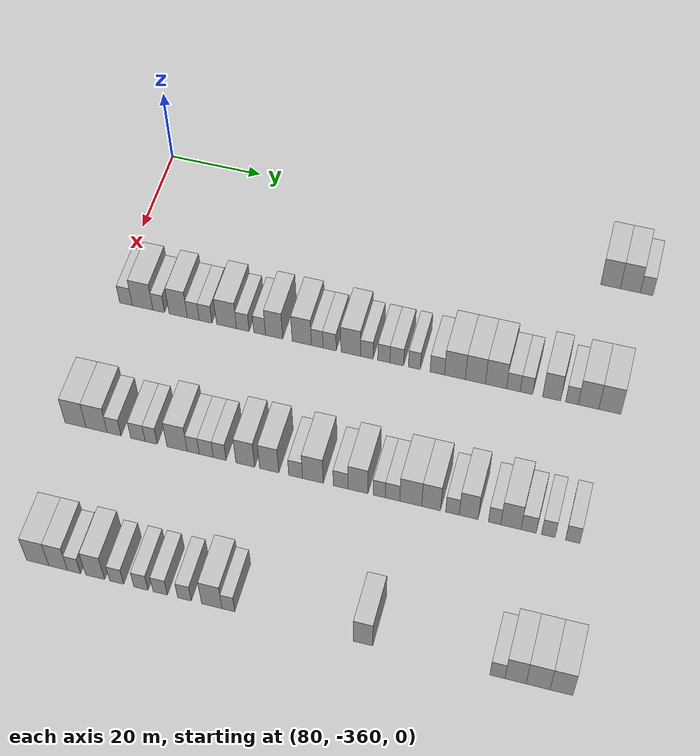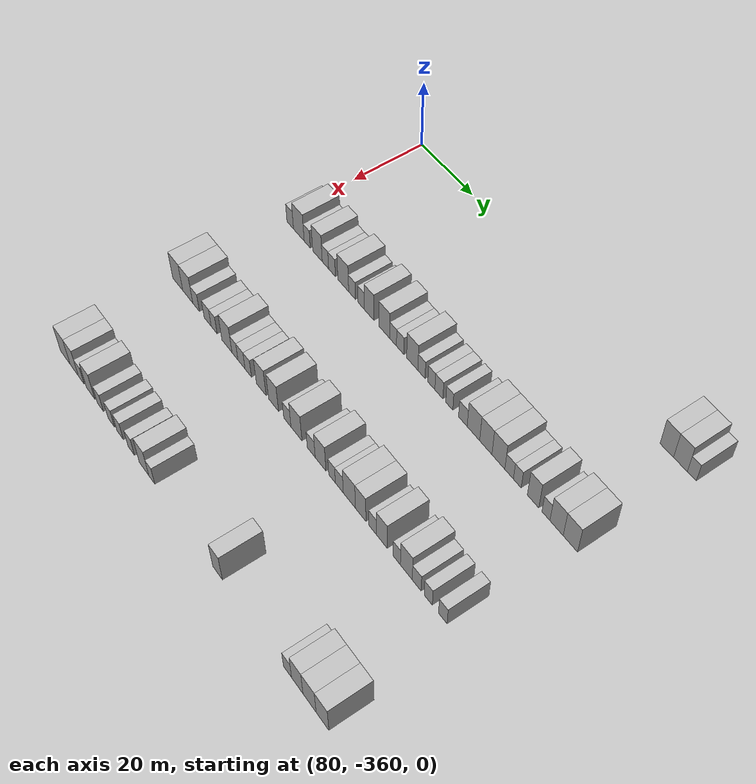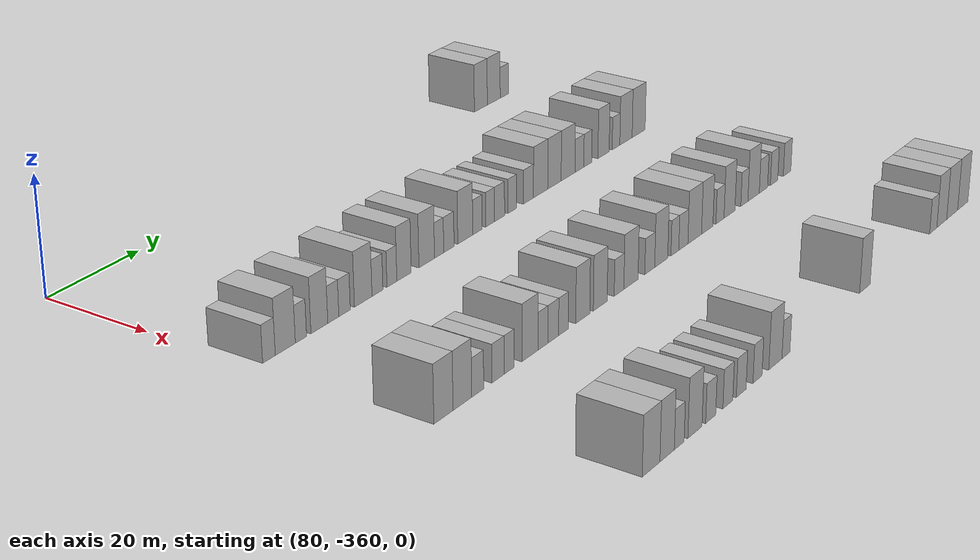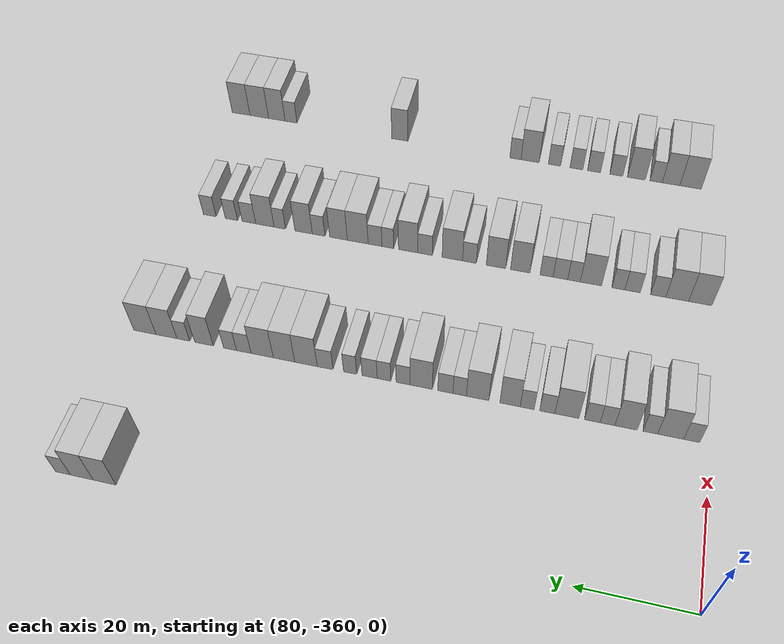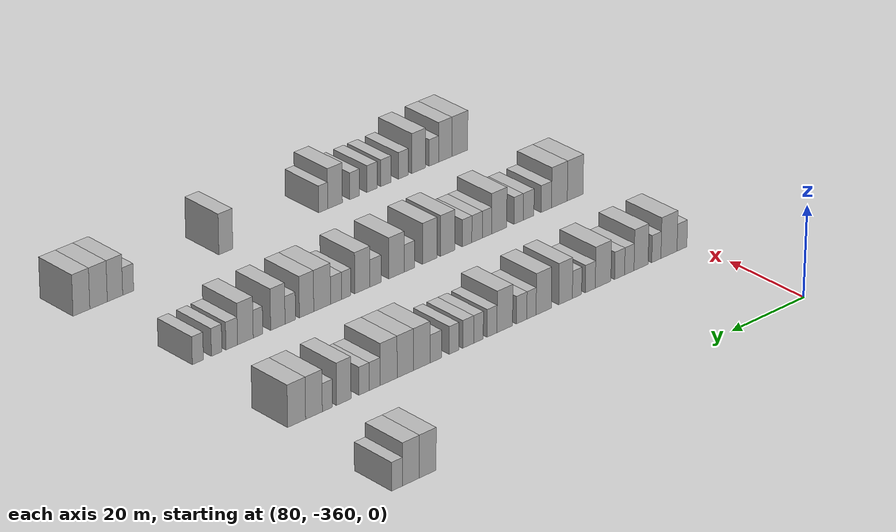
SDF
<sdf version="1.6">
 <world name="default">
  <model name="building_505">
   <static>1</static>
   <pose>85.0000 -260.9077 0 0.000000 0.000000 0.000000</pose>
   <link name="link">
    <pose>0 0 4.50 0 0 0</pose>
    <collision name="collision"><geometry><box><size>10.0000 4.1247 9.0000</size></box></geometry></collision>
    <visual name="visual">
     <cast_shadows>0</cast_shadows>
     <geometry><box><size>10.0000 4.1247 9.0000</size></box></geometry>
     <material>
      <script>
       <uri>model://HANNAS_wall/materials/scripts</uri>
       <uri>model://HANNAS_wall/materials/textures</uri>
       <name>vrc/HANNAS_wall</name>
      </script>
     </material>
    </visual>
   </link>
  </model>
  <model name="building_506">
   <static>1</static>
   <pose>85.0000 -256.7634 0 0.000000 0.000000 0.000000</pose>
   <link name="link">
    <pose>0 0 4.50 0 0 0</pose>
    <collision name="collision"><geometry><box><size>10.0000 4.1638 9.0000</size></box></geometry></collision>
    <visual name="visual">
     <cast_shadows>0</cast_shadows>
     <geometry><box><size>10.0000 4.1638 9.0000</size></box></geometry>
     <material>
      <script>
       <uri>model://HANNAS_wall/materials/scripts</uri>
       <uri>model://HANNAS_wall/materials/textures</uri>
       <name>vrc/HANNAS_wall</name>
      </script>
     </material>
    </visual>
   </link>
  </model>
  <model name="building_507">
   <static>1</static>
   <pose>85.0000 -253.3404 0 0.000000 0.000000 0.000000</pose>
   <link name="link">
    <pose>0 0 3.00 0 0 0</pose>
    <collision name="collision"><geometry><box><size>10.0000 2.6822 6.0000</size></box></geometry></collision>
    <visual name="visual">
     <cast_shadows>0</cast_shadows>
     <geometry><box><size>10.0000 2.6822 6.0000</size></box></geometry>
     <material>
      <script>
       <uri>model://HANNAS_wall/materials/scripts</uri>
       <uri>model://HANNAS_wall/materials/textures</uri>
       <name>vrc/HANNAS_wall</name>
      </script>
     </material>
    </visual>
   </link>
  </model>
  <model name="building_708">
   <static>1</static>
   <pose>115.0000 -356.8644 0 0.000000 0.000000 0.000000</pose>
   <link name="link">
    <pose>0 0 3.00 0 0 0</pose>
    <collision name="collision"><geometry><box><size>10.0000 2.7618 6.0000</size></box></geometry></collision>
    <visual name="visual">
     <cast_shadows>0</cast_shadows>
     <geometry><box><size>10.0000 2.7618 6.0000</size></box></geometry>
     <material>
      <script>
       <uri>model://HANNAS_wall/materials/scripts</uri>
       <uri>model://HANNAS_wall/materials/textures</uri>
       <name>vrc/HANNAS_wall</name>
      </script>
     </material>
    </visual>
   </link>
  </model>
  <model name="building_709">
   <static>1</static>
   <pose>115.0000 -353.2475 0 0.000000 0.000000 0.000000</pose>
   <link name="link">
    <pose>0 0 4.50 0 0 0</pose>
    <collision name="collision"><geometry><box><size>10.0000 4.4720 9.0000</size></box></geometry></collision>
    <visual name="visual">
     <cast_shadows>0</cast_shadows>
     <geometry><box><size>10.0000 4.4720 9.0000</size></box></geometry>
     <material>
      <script>
       <uri>model://HANNAS_wall/materials/scripts</uri>
       <uri>model://HANNAS_wall/materials/textures</uri>
       <name>vrc/HANNAS_wall</name>
      </script>
     </material>
    </visual>
   </link>
  </model>
  <model name="building_710">
   <static>1</static>
   <pose>115.0000 -349.7443 0 0.000000 0.000000 0.000000</pose>
   <link name="link">
    <pose>0 0 3.00 0 0 0</pose>
    <collision name="collision"><geometry><box><size>10.0000 2.5344 6.0000</size></box></geometry></collision>
    <visual name="visual">
     <cast_shadows>0</cast_shadows>
     <geometry><box><size>10.0000 2.5344 6.0000</size></box></geometry>
     <material>
      <script>
       <uri>model://HANNAS_wall/materials/scripts</uri>
       <uri>model://HANNAS_wall/materials/textures</uri>
       <name>vrc/HANNAS_wall</name>
      </script>
     </material>
    </visual>
   </link>
  </model>
  <model name="building_711">
   <static>1</static>
   <pose>115.0000 -345.5267 0 0.000000 0.000000 0.000000</pose>
   <link name="link">
    <pose>0 0 4.50 0 0 0</pose>
    <collision name="collision"><geometry><box><size>10.0000 3.9007 9.0000</size></box></geometry></collision>
    <visual name="visual">
     <cast_shadows>0</cast_shadows>
     <geometry><box><size>10.0000 3.9007 9.0000</size></box></geometry>
     <material>
      <script>
       <uri>model://HANNAS_wall/materials/scripts</uri>
       <uri>model://HANNAS_wall/materials/textures</uri>
       <name>vrc/HANNAS_wall</name>
      </script>
     </material>
    </visual>
   </link>
  </model>
  <model name="building_712">
   <static>1</static>
   <pose>115.0000 -342.2818 0 0.000000 0.000000 0.000000</pose>
   <link name="link">
    <pose>0 0 3.00 0 0 0</pose>
    <collision name="collision"><geometry><box><size>10.0000 2.5893 6.0000</size></box></geometry></collision>
    <visual name="visual">
     <cast_shadows>0</cast_shadows>
     <geometry><box><size>10.0000 2.5893 6.0000</size></box></geometry>
     <material>
      <script>
       <uri>model://HANNAS_wall/materials/scripts</uri>
       <uri>model://HANNAS_wall/materials/textures</uri>
       <name>vrc/HANNAS_wall</name>
      </script>
     </material>
    </visual>
   </link>
  </model>
  <model name="building_713">
   <static>1</static>
   <pose>115.0000 -339.6200 0 0.000000 0.000000 0.000000</pose>
   <link name="link">
    <pose>0 0 3.00 0 0 0</pose>
    <collision name="collision"><geometry><box><size>10.0000 2.7343 6.0000</size></box></geometry></collision>
    <visual name="visual">
     <cast_shadows>0</cast_shadows>
     <geometry><box><size>10.0000 2.7343 6.0000</size></box></geometry>
     <material>
      <script>
       <uri>model://HANNAS_wall/materials/scripts</uri>
       <uri>model://HANNAS_wall/materials/textures</uri>
       <name>vrc/HANNAS_wall</name>
      </script>
     </material>
    </visual>
   </link>
  </model>
  <model name="building_714">
   <static>1</static>
   <pose>115.0000 -335.1193 0 0.000000 0.000000 0.000000</pose>
   <link name="link">
    <pose>0 0 4.50 0 0 0</pose>
    <collision name="collision"><geometry><box><size>10.0000 4.2670 9.0000</size></box></geometry></collision>
    <visual name="visual">
     <cast_shadows>0</cast_shadows>
     <geometry><box><size>10.0000 4.2670 9.0000</size></box></geometry>
     <material>
      <script>
       <uri>model://HANNAS_wall/materials/scripts</uri>
       <uri>model://HANNAS_wall/materials/textures</uri>
       <name>vrc/HANNAS_wall</name>
      </script>
     </material>
    </visual>
   </link>
  </model>
  <model name="building_715">
   <static>1</static>
   <pose>115.0000 -331.6394 0 0.000000 0.000000 0.000000</pose>
   <link name="link">
    <pose>0 0 3.00 0 0 0</pose>
    <collision name="collision"><geometry><box><size>10.0000 2.6928 6.0000</size></box></geometry></collision>
    <visual name="visual">
     <cast_shadows>0</cast_shadows>
     <geometry><box><size>10.0000 2.6928 6.0000</size></box></geometry>
     <material>
      <script>
       <uri>model://HANNAS_wall/materials/scripts</uri>
       <uri>model://HANNAS_wall/materials/textures</uri>
       <name>vrc/HANNAS_wall</name>
      </script>
     </material>
    </visual>
   </link>
  </model>
  <model name="building_716">
   <static>1</static>
   <pose>115.0000 -328.0481 0 0.000000 0.000000 0.000000</pose>
   <link name="link">
    <pose>0 0 3.00 0 0 0</pose>
    <collision name="collision"><geometry><box><size>10.0000 2.4899 6.0000</size></box></geometry></collision>
    <visual name="visual">
     <cast_shadows>0</cast_shadows>
     <geometry><box><size>10.0000 2.4899 6.0000</size></box></geometry>
     <material>
      <script>
       <uri>model://HANNAS_wall/materials/scripts</uri>
       <uri>model://HANNAS_wall/materials/textures</uri>
       <name>vrc/HANNAS_wall</name>
      </script>
     </material>
    </visual>
   </link>
  </model>
  <model name="building_717">
   <static>1</static>
   <pose>115.0000 -324.9728 0 0.000000 0.000000 0.000000</pose>
   <link name="link">
    <pose>0 0 4.50 0 0 0</pose>
    <collision name="collision"><geometry><box><size>10.0000 3.6605 9.0000</size></box></geometry></collision>
    <visual name="visual">
     <cast_shadows>0</cast_shadows>
     <geometry><box><size>10.0000 3.6605 9.0000</size></box></geometry>
     <material>
      <script>
       <uri>model://HANNAS_wall/materials/scripts</uri>
       <uri>model://HANNAS_wall/materials/textures</uri>
       <name>vrc/HANNAS_wall</name>
      </script>
     </material>
    </visual>
   </link>
  </model>
  <model name="building_718">
   <static>1</static>
   <pose>115.0000 -319.1096 0 0.000000 0.000000 0.000000</pose>
   <link name="link">
    <pose>0 0 4.50 0 0 0</pose>
    <collision name="collision"><geometry><box><size>10.0000 4.0659 9.0000</size></box></geometry></collision>
    <visual name="visual">
     <cast_shadows>0</cast_shadows>
     <geometry><box><size>10.0000 4.0659 9.0000</size></box></geometry>
     <material>
      <script>
       <uri>model://HANNAS_wall/materials/scripts</uri>
       <uri>model://HANNAS_wall/materials/textures</uri>
       <name>vrc/HANNAS_wall</name>
      </script>
     </material>
    </visual>
   </link>
  </model>
  <model name="building_719">
   <static>1</static>
   <pose>115.0000 -315.8519 0 0.000000 0.000000 0.000000</pose>
   <link name="link">
    <pose>0 0 3.00 0 0 0</pose>
    <collision name="collision"><geometry><box><size>10.0000 2.4496 6.0000</size></box></geometry></collision>
    <visual name="visual">
     <cast_shadows>0</cast_shadows>
     <geometry><box><size>10.0000 2.4496 6.0000</size></box></geometry>
     <material>
      <script>
       <uri>model://HANNAS_wall/materials/scripts</uri>
       <uri>model://HANNAS_wall/materials/textures</uri>
       <name>vrc/HANNAS_wall</name>
      </script>
     </material>
    </visual>
   </link>
  </model>
  <model name="building_720">
   <static>1</static>
   <pose>115.0000 -313.2362 0 0.000000 0.000000 0.000000</pose>
   <link name="link">
    <pose>0 0 3.00 0 0 0</pose>
    <collision name="collision"><geometry><box><size>10.0000 2.7818 6.0000</size></box></geometry></collision>
    <visual name="visual">
     <cast_shadows>0</cast_shadows>
     <geometry><box><size>10.0000 2.7818 6.0000</size></box></geometry>
     <material>
      <script>
       <uri>model://HANNAS_wall/materials/scripts</uri>
       <uri>model://HANNAS_wall/materials/textures</uri>
       <name>vrc/HANNAS_wall</name>
      </script>
     </material>
    </visual>
   </link>
  </model>
  <model name="building_721">
   <static>1</static>
   <pose>115.0000 -308.7893 0 0.000000 0.000000 0.000000</pose>
   <link name="link">
    <pose>0 0 4.50 0 0 0</pose>
    <collision name="collision"><geometry><box><size>10.0000 4.1120 9.0000</size></box></geometry></collision>
    <visual name="visual">
     <cast_shadows>0</cast_shadows>
     <geometry><box><size>10.0000 4.1120 9.0000</size></box></geometry>
     <material>
      <script>
       <uri>model://HANNAS_wall/materials/scripts</uri>
       <uri>model://HANNAS_wall/materials/textures</uri>
       <name>vrc/HANNAS_wall</name>
      </script>
     </material>
    </visual>
   </link>
  </model>
  <model name="building_722">
   <static>1</static>
   <pose>115.0000 -305.4355 0 0.000000 0.000000 0.000000</pose>
   <link name="link">
    <pose>0 0 3.00 0 0 0</pose>
    <collision name="collision"><geometry><box><size>10.0000 2.5956 6.0000</size></box></geometry></collision>
    <visual name="visual">
     <cast_shadows>0</cast_shadows>
     <geometry><box><size>10.0000 2.5956 6.0000</size></box></geometry>
     <material>
      <script>
       <uri>model://HANNAS_wall/materials/scripts</uri>
       <uri>model://HANNAS_wall/materials/textures</uri>
       <name>vrc/HANNAS_wall</name>
      </script>
     </material>
    </visual>
   </link>
  </model>
  <model name="building_723">
   <static>1</static>
   <pose>115.0000 -301.8810 0 0.000000 0.000000 0.000000</pose>
   <link name="link">
    <pose>0 0 3.00 0 0 0</pose>
    <collision name="collision"><geometry><box><size>10.0000 2.5132 6.0000</size></box></geometry></collision>
    <visual name="visual">
     <cast_shadows>0</cast_shadows>
     <geometry><box><size>10.0000 2.5132 6.0000</size></box></geometry>
     <material>
      <script>
       <uri>model://HANNAS_wall/materials/scripts</uri>
       <uri>model://HANNAS_wall/materials/textures</uri>
       <name>vrc/HANNAS_wall</name>
      </script>
     </material>
    </visual>
   </link>
  </model>
  <model name="building_724">
   <static>1</static>
   <pose>115.0000 -299.1929 0 0.000000 0.000000 0.000000</pose>
   <link name="link">
    <pose>0 0 3.00 0 0 0</pose>
    <collision name="collision"><geometry><box><size>10.0000 2.8631 6.0000</size></box></geometry></collision>
    <visual name="visual">
     <cast_shadows>0</cast_shadows>
     <geometry><box><size>10.0000 2.8631 6.0000</size></box></geometry>
     <material>
      <script>
       <uri>model://HANNAS_wall/materials/scripts</uri>
       <uri>model://HANNAS_wall/materials/textures</uri>
       <name>vrc/HANNAS_wall</name>
      </script>
     </material>
    </visual>
   </link>
  </model>
  <model name="building_725">
   <static>1</static>
   <pose>115.0000 -295.5247 0 0.000000 0.000000 0.000000</pose>
   <link name="link">
    <pose>0 0 3.00 0 0 0</pose>
    <collision name="collision"><geometry><box><size>10.0000 2.4732 6.0000</size></box></geometry></collision>
    <visual name="visual">
     <cast_shadows>0</cast_shadows>
     <geometry><box><size>10.0000 2.4732 6.0000</size></box></geometry>
     <material>
      <script>
       <uri>model://HANNAS_wall/materials/scripts</uri>
       <uri>model://HANNAS_wall/materials/textures</uri>
       <name>vrc/HANNAS_wall</name>
      </script>
     </material>
    </visual>
   </link>
  </model>
  <model name="building_726">
   <static>1</static>
   <pose>115.0000 -290.7898 0 0.000000 0.000000 0.000000</pose>
   <link name="link">
    <pose>0 0 3.00 0 0 0</pose>
    <collision name="collision"><geometry><box><size>10.0000 2.9967 6.0000</size></box></geometry></collision>
    <visual name="visual">
     <cast_shadows>0</cast_shadows>
     <geometry><box><size>10.0000 2.9967 6.0000</size></box></geometry>
     <material>
      <script>
       <uri>model://HANNAS_wall/materials/scripts</uri>
       <uri>model://HANNAS_wall/materials/textures</uri>
       <name>vrc/HANNAS_wall</name>
      </script>
     </material>
    </visual>
   </link>
  </model>
  <model name="building_727">
   <static>1</static>
   <pose>115.0000 -287.1499 0 0.000000 0.000000 0.000000</pose>
   <link name="link">
    <pose>0 0 4.50 0 0 0</pose>
    <collision name="collision"><geometry><box><size>10.0000 4.2832 9.0000</size></box></geometry></collision>
    <visual name="visual">
     <cast_shadows>0</cast_shadows>
     <geometry><box><size>10.0000 4.2832 9.0000</size></box></geometry>
     <material>
      <script>
       <uri>model://HANNAS_wall/materials/scripts</uri>
       <uri>model://HANNAS_wall/materials/textures</uri>
       <name>vrc/HANNAS_wall</name>
      </script>
     </material>
    </visual>
   </link>
  </model>
  <model name="building_728">
   <static>1</static>
   <pose>115.0000 -282.9449 0 0.000000 0.000000 0.000000</pose>
   <link name="link">
    <pose>0 0 4.50 0 0 0</pose>
    <collision name="collision"><geometry><box><size>10.0000 4.1266 9.0000</size></box></geometry></collision>
    <visual name="visual">
     <cast_shadows>0</cast_shadows>
     <geometry><box><size>10.0000 4.1266 9.0000</size></box></geometry>
     <material>
      <script>
       <uri>model://HANNAS_wall/materials/scripts</uri>
       <uri>model://HANNAS_wall/materials/textures</uri>
       <name>vrc/HANNAS_wall</name>
      </script>
     </material>
    </visual>
   </link>
  </model>
  <model name="building_729">
   <static>1</static>
   <pose>115.0000 -278.7370 0 0.000000 0.000000 0.000000</pose>
   <link name="link">
    <pose>0 0 4.50 0 0 0</pose>
    <collision name="collision"><geometry><box><size>10.0000 4.2893 9.0000</size></box></geometry></collision>
    <visual name="visual">
     <cast_shadows>0</cast_shadows>
     <geometry><box><size>10.0000 4.2893 9.0000</size></box></geometry>
     <material>
      <script>
       <uri>model://HANNAS_wall/materials/scripts</uri>
       <uri>model://HANNAS_wall/materials/textures</uri>
       <name>vrc/HANNAS_wall</name>
      </script>
     </material>
    </visual>
   </link>
  </model>
  <model name="building_730">
   <static>1</static>
   <pose>115.0000 -275.1830 0 0.000000 0.000000 0.000000</pose>
   <link name="link">
    <pose>0 0 3.00 0 0 0</pose>
    <collision name="collision"><geometry><box><size>10.0000 2.8186 6.0000</size></box></geometry></collision>
    <visual name="visual">
     <cast_shadows>0</cast_shadows>
     <geometry><box><size>10.0000 2.8186 6.0000</size></box></geometry>
     <material>
      <script>
       <uri>model://HANNAS_wall/materials/scripts</uri>
       <uri>model://HANNAS_wall/materials/textures</uri>
       <name>vrc/HANNAS_wall</name>
      </script>
     </material>
    </visual>
   </link>
  </model>
  <model name="building_731">
   <static>1</static>
   <pose>115.0000 -272.5029 0 0.000000 0.000000 0.000000</pose>
   <link name="link">
    <pose>0 0 3.00 0 0 0</pose>
    <collision name="collision"><geometry><box><size>10.0000 2.5417 6.0000</size></box></geometry></collision>
    <visual name="visual">
     <cast_shadows>0</cast_shadows>
     <geometry><box><size>10.0000 2.5417 6.0000</size></box></geometry>
     <material>
      <script>
       <uri>model://HANNAS_wall/materials/scripts</uri>
       <uri>model://HANNAS_wall/materials/textures</uri>
       <name>vrc/HANNAS_wall</name>
      </script>
     </material>
    </visual>
   </link>
  </model>
  <model name="building_732">
   <static>1</static>
   <pose>115.0000 -267.3993 0 0.000000 0.000000 0.000000</pose>
   <link name="link">
    <pose>0 0 4.50 0 0 0</pose>
    <collision name="collision"><geometry><box><size>10.0000 3.6655 9.0000</size></box></geometry></collision>
    <visual name="visual">
     <cast_shadows>0</cast_shadows>
     <geometry><box><size>10.0000 3.6655 9.0000</size></box></geometry>
     <material>
      <script>
       <uri>model://HANNAS_wall/materials/scripts</uri>
       <uri>model://HANNAS_wall/materials/textures</uri>
       <name>vrc/HANNAS_wall</name>
      </script>
     </material>
    </visual>
   </link>
  </model>
  <model name="building_733">
   <static>1</static>
   <pose>115.0000 -263.3040 0 0.000000 0.000000 0.000000</pose>
   <link name="link">
    <pose>0 0 3.00 0 0 0</pose>
    <collision name="collision"><geometry><box><size>10.0000 2.5251 6.0000</size></box></geometry></collision>
    <visual name="visual">
     <cast_shadows>0</cast_shadows>
     <geometry><box><size>10.0000 2.5251 6.0000</size></box></geometry>
     <material>
      <script>
       <uri>model://HANNAS_wall/materials/scripts</uri>
       <uri>model://HANNAS_wall/materials/textures</uri>
       <name>vrc/HANNAS_wall</name>
      </script>
     </material>
    </visual>
   </link>
  </model>
  <model name="building_734">
   <static>1</static>
   <pose>115.0000 -259.9657 0 0.000000 0.000000 0.000000</pose>
   <link name="link">
    <pose>0 0 4.50 0 0 0</pose>
    <collision name="collision"><geometry><box><size>10.0000 4.1515 9.0000</size></box></geometry></collision>
    <visual name="visual">
     <cast_shadows>0</cast_shadows>
     <geometry><box><size>10.0000 4.1515 9.0000</size></box></geometry>
     <material>
      <script>
       <uri>model://HANNAS_wall/materials/scripts</uri>
       <uri>model://HANNAS_wall/materials/textures</uri>
       <name>vrc/HANNAS_wall</name>
      </script>
     </material>
    </visual>
   </link>
  </model>
  <model name="building_735">
   <static>1</static>
   <pose>115.0000 -255.6677 0 0.000000 0.000000 0.000000</pose>
   <link name="link">
    <pose>0 0 4.50 0 0 0</pose>
    <collision name="collision"><geometry><box><size>10.0000 4.4446 9.0000</size></box></geometry></collision>
    <visual name="visual">
     <cast_shadows>0</cast_shadows>
     <geometry><box><size>10.0000 4.4446 9.0000</size></box></geometry>
     <material>
      <script>
       <uri>model://HANNAS_wall/materials/scripts</uri>
       <uri>model://HANNAS_wall/materials/textures</uri>
       <name>vrc/HANNAS_wall</name>
      </script>
     </material>
    </visual>
   </link>
  </model>
  <model name="building_938">
   <static>1</static>
   <pose>145.0000 -356.8283 0 0.000000 0.000000 0.000000</pose>
   <link name="link">
    <pose>0 0 4.50 0 0 0</pose>
    <collision name="collision"><geometry><box><size>10.0000 4.4118 9.0000</size></box></geometry></collision>
    <visual name="visual">
     <cast_shadows>0</cast_shadows>
     <geometry><box><size>10.0000 4.4118 9.0000</size></box></geometry>
     <material>
      <script>
       <uri>model://HANNAS_wall/materials/scripts</uri>
       <uri>model://HANNAS_wall/materials/textures</uri>
       <name>vrc/HANNAS_wall</name>
      </script>
     </material>
    </visual>
   </link>
  </model>
  <model name="building_939">
   <static>1</static>
   <pose>145.0000 -352.4324 0 0.000000 0.000000 0.000000</pose>
   <link name="link">
    <pose>0 0 4.50 0 0 0</pose>
    <collision name="collision"><geometry><box><size>10.0000 4.3799 9.0000</size></box></geometry></collision>
    <visual name="visual">
     <cast_shadows>0</cast_shadows>
     <geometry><box><size>10.0000 4.3799 9.0000</size></box></geometry>
     <material>
      <script>
       <uri>model://HANNAS_wall/materials/scripts</uri>
       <uri>model://HANNAS_wall/materials/textures</uri>
       <name>vrc/HANNAS_wall</name>
      </script>
     </material>
    </visual>
   </link>
  </model>
  <model name="building_940">
   <static>1</static>
   <pose>145.0000 -348.8052 0 0.000000 0.000000 0.000000</pose>
   <link name="link">
    <pose>0 0 3.00 0 0 0</pose>
    <collision name="collision"><geometry><box><size>10.0000 2.8744 6.0000</size></box></geometry></collision>
    <visual name="visual">
     <cast_shadows>0</cast_shadows>
     <geometry><box><size>10.0000 2.8744 6.0000</size></box></geometry>
     <material>
      <script>
       <uri>model://HANNAS_wall/materials/scripts</uri>
       <uri>model://HANNAS_wall/materials/textures</uri>
       <name>vrc/HANNAS_wall</name>
      </script>
     </material>
    </visual>
   </link>
  </model>
  <model name="building_941">
   <static>1</static>
   <pose>145.0000 -343.8777 0 0.000000 0.000000 0.000000</pose>
   <link name="link">
    <pose>0 0 3.00 0 0 0</pose>
    <collision name="collision"><geometry><box><size>10.0000 2.9807 6.0000</size></box></geometry></collision>
    <visual name="visual">
     <cast_shadows>0</cast_shadows>
     <geometry><box><size>10.0000 2.9807 6.0000</size></box></geometry>
     <material>
      <script>
       <uri>model://HANNAS_wall/materials/scripts</uri>
       <uri>model://HANNAS_wall/materials/textures</uri>
       <name>vrc/HANNAS_wall</name>
      </script>
     </material>
    </visual>
   </link>
  </model>
  <model name="building_942">
   <static>1</static>
   <pose>145.0000 -341.1432 0 0.000000 0.000000 0.000000</pose>
   <link name="link">
    <pose>0 0 3.00 0 0 0</pose>
    <collision name="collision"><geometry><box><size>10.0000 2.4883 6.0000</size></box></geometry></collision>
    <visual name="visual">
     <cast_shadows>0</cast_shadows>
     <geometry><box><size>10.0000 2.4883 6.0000</size></box></geometry>
     <material>
      <script>
       <uri>model://HANNAS_wall/materials/scripts</uri>
       <uri>model://HANNAS_wall/materials/textures</uri>
       <name>vrc/HANNAS_wall</name>
      </script>
     </material>
    </visual>
   </link>
  </model>
  <model name="building_943">
   <static>1</static>
   <pose>145.0000 -335.8153 0 0.000000 0.000000 0.000000</pose>
   <link name="link">
    <pose>0 0 4.50 0 0 0</pose>
    <collision name="collision"><geometry><box><size>10.0000 4.1676 9.0000</size></box></geometry></collision>
    <visual name="visual">
     <cast_shadows>0</cast_shadows>
     <geometry><box><size>10.0000 4.1676 9.0000</size></box></geometry>
     <material>
      <script>
       <uri>model://HANNAS_wall/materials/scripts</uri>
       <uri>model://HANNAS_wall/materials/textures</uri>
       <name>vrc/HANNAS_wall</name>
      </script>
     </material>
    </visual>
   </link>
  </model>
  <model name="building_944">
   <static>1</static>
   <pose>145.0000 -332.5053 0 0.000000 0.000000 0.000000</pose>
   <link name="link">
    <pose>0 0 3.00 0 0 0</pose>
    <collision name="collision"><geometry><box><size>10.0000 2.4524 6.0000</size></box></geometry></collision>
    <visual name="visual">
     <cast_shadows>0</cast_shadows>
     <geometry><box><size>10.0000 2.4524 6.0000</size></box></geometry>
     <material>
      <script>
       <uri>model://HANNAS_wall/materials/scripts</uri>
       <uri>model://HANNAS_wall/materials/textures</uri>
       <name>vrc/HANNAS_wall</name>
      </script>
     </material>
    </visual>
   </link>
  </model>
  <model name="building_945">
   <static>1</static>
   <pose>145.0000 -329.8388 0 0.000000 0.000000 0.000000</pose>
   <link name="link">
    <pose>0 0 3.00 0 0 0</pose>
    <collision name="collision"><geometry><box><size>10.0000 2.8806 6.0000</size></box></geometry></collision>
    <visual name="visual">
     <cast_shadows>0</cast_shadows>
     <geometry><box><size>10.0000 2.8806 6.0000</size></box></geometry>
     <material>
      <script>
       <uri>model://HANNAS_wall/materials/scripts</uri>
       <uri>model://HANNAS_wall/materials/textures</uri>
       <name>vrc/HANNAS_wall</name>
      </script>
     </material>
    </visual>
   </link>
  </model>
  <model name="building_946">
   <static>1</static>
   <pose>145.0000 -327.1089 0 0.000000 0.000000 0.000000</pose>
   <link name="link">
    <pose>0 0 3.00 0 0 0</pose>
    <collision name="collision"><geometry><box><size>10.0000 2.5794 6.0000</size></box></geometry></collision>
    <visual name="visual">
     <cast_shadows>0</cast_shadows>
     <geometry><box><size>10.0000 2.5794 6.0000</size></box></geometry>
     <material>
      <script>
       <uri>model://HANNAS_wall/materials/scripts</uri>
       <uri>model://HANNAS_wall/materials/textures</uri>
       <name>vrc/HANNAS_wall</name>
      </script>
     </material>
    </visual>
   </link>
  </model>
  <model name="building_947">
   <static>1</static>
   <pose>145.0000 -321.9064 0 0.000000 0.000000 0.000000</pose>
   <link name="link">
    <pose>0 0 4.50 0 0 0</pose>
    <collision name="collision"><geometry><box><size>10.0000 3.8255 9.0000</size></box></geometry></collision>
    <visual name="visual">
     <cast_shadows>0</cast_shadows>
     <geometry><box><size>10.0000 3.8255 9.0000</size></box></geometry>
     <material>
      <script>
       <uri>model://HANNAS_wall/materials/scripts</uri>
       <uri>model://HANNAS_wall/materials/textures</uri>
       <name>vrc/HANNAS_wall</name>
      </script>
     </material>
    </visual>
   </link>
  </model>
  <model name="building_948">
   <static>1</static>
   <pose>145.0000 -317.0617 0 0.000000 0.000000 0.000000</pose>
   <link name="link">
    <pose>0 0 4.50 0 0 0</pose>
    <collision name="collision"><geometry><box><size>10.0000 3.8639 9.0000</size></box></geometry></collision>
    <visual name="visual">
     <cast_shadows>0</cast_shadows>
     <geometry><box><size>10.0000 3.8639 9.0000</size></box></geometry>
     <material>
      <script>
       <uri>model://HANNAS_wall/materials/scripts</uri>
       <uri>model://HANNAS_wall/materials/textures</uri>
       <name>vrc/HANNAS_wall</name>
      </script>
     </material>
    </visual>
   </link>
  </model>
  <model name="building_949">
   <static>1</static>
   <pose>145.0000 -311.7407 0 0.000000 0.000000 0.000000</pose>
   <link name="link">
    <pose>0 0 3.00 0 0 0</pose>
    <collision name="collision"><geometry><box><size>10.0000 2.7782 6.0000</size></box></geometry></collision>
    <visual name="visual">
     <cast_shadows>0</cast_shadows>
     <geometry><box><size>10.0000 2.7782 6.0000</size></box></geometry>
     <material>
      <script>
       <uri>model://HANNAS_wall/materials/scripts</uri>
       <uri>model://HANNAS_wall/materials/textures</uri>
       <name>vrc/HANNAS_wall</name>
      </script>
     </material>
    </visual>
   </link>
  </model>
  <model name="building_950">
   <static>1</static>
   <pose>145.0000 -308.2813 0 0.000000 0.000000 0.000000</pose>
   <link name="link">
    <pose>0 0 4.50 0 0 0</pose>
    <collision name="collision"><geometry><box><size>10.0000 4.1406 9.0000</size></box></geometry></collision>
    <visual name="visual">
     <cast_shadows>0</cast_shadows>
     <geometry><box><size>10.0000 4.1406 9.0000</size></box></geometry>
     <material>
      <script>
       <uri>model://HANNAS_wall/materials/scripts</uri>
       <uri>model://HANNAS_wall/materials/textures</uri>
       <name>vrc/HANNAS_wall</name>
      </script>
     </material>
    </visual>
   </link>
  </model>
  <model name="building_951">
   <static>1</static>
   <pose>145.0000 -302.7348 0 0.000000 0.000000 0.000000</pose>
   <link name="link">
    <pose>0 0 3.00 0 0 0</pose>
    <collision name="collision"><geometry><box><size>10.0000 2.9525 6.0000</size></box></geometry></collision>
    <visual name="visual">
     <cast_shadows>0</cast_shadows>
     <geometry><box><size>10.0000 2.9525 6.0000</size></box></geometry>
     <material>
      <script>
       <uri>model://HANNAS_wall/materials/scripts</uri>
       <uri>model://HANNAS_wall/materials/textures</uri>
       <name>vrc/HANNAS_wall</name>
      </script>
     </material>
    </visual>
   </link>
  </model>
  <model name="building_952">
   <static>1</static>
   <pose>145.0000 -299.2792 0 0.000000 0.000000 0.000000</pose>
   <link name="link">
    <pose>0 0 4.50 0 0 0</pose>
    <collision name="collision"><geometry><box><size>10.0000 3.9588 9.0000</size></box></geometry></collision>
    <visual name="visual">
     <cast_shadows>0</cast_shadows>
     <geometry><box><size>10.0000 3.9588 9.0000</size></box></geometry>
     <material>
      <script>
       <uri>model://HANNAS_wall/materials/scripts</uri>
       <uri>model://HANNAS_wall/materials/textures</uri>
       <name>vrc/HANNAS_wall</name>
      </script>
     </material>
    </visual>
   </link>
  </model>
  <model name="building_953">
   <static>1</static>
   <pose>145.0000 -295.0889 0 0.000000 0.000000 0.000000</pose>
   <link name="link">
    <pose>0 0 3.00 0 0 0</pose>
    <collision name="collision"><geometry><box><size>10.0000 2.4218 6.0000</size></box></geometry></collision>
    <visual name="visual">
     <cast_shadows>0</cast_shadows>
     <geometry><box><size>10.0000 2.4218 6.0000</size></box></geometry>
     <material>
      <script>
       <uri>model://HANNAS_wall/materials/scripts</uri>
       <uri>model://HANNAS_wall/materials/textures</uri>
       <name>vrc/HANNAS_wall</name>
      </script>
     </material>
    </visual>
   </link>
  </model>
  <model name="building_954">
   <static>1</static>
   <pose>145.0000 -292.4491 0 0.000000 0.000000 0.000000</pose>
   <link name="link">
    <pose>0 0 3.00 0 0 0</pose>
    <collision name="collision"><geometry><box><size>10.0000 2.8577 6.0000</size></box></geometry></collision>
    <visual name="visual">
     <cast_shadows>0</cast_shadows>
     <geometry><box><size>10.0000 2.8577 6.0000</size></box></geometry>
     <material>
      <script>
       <uri>model://HANNAS_wall/materials/scripts</uri>
       <uri>model://HANNAS_wall/materials/textures</uri>
       <name>vrc/HANNAS_wall</name>
      </script>
     </material>
    </visual>
   </link>
  </model>
  <model name="building_955">
   <static>1</static>
   <pose>145.0000 -288.8513 0 0.000000 0.000000 0.000000</pose>
   <link name="link">
    <pose>0 0 4.50 0 0 0</pose>
    <collision name="collision"><geometry><box><size>10.0000 4.3379 9.0000</size></box></geometry></collision>
    <visual name="visual">
     <cast_shadows>0</cast_shadows>
     <geometry><box><size>10.0000 4.3379 9.0000</size></box></geometry>
     <material>
      <script>
       <uri>model://HANNAS_wall/materials/scripts</uri>
       <uri>model://HANNAS_wall/materials/textures</uri>
       <name>vrc/HANNAS_wall</name>
      </script>
     </material>
    </visual>
   </link>
  </model>
  <model name="building_956">
   <static>1</static>
   <pose>145.0000 -284.8399 0 0.000000 0.000000 0.000000</pose>
   <link name="link">
    <pose>0 0 4.50 0 0 0</pose>
    <collision name="collision"><geometry><box><size>10.0000 3.6849 9.0000</size></box></geometry></collision>
    <visual name="visual">
     <cast_shadows>0</cast_shadows>
     <geometry><box><size>10.0000 3.6849 9.0000</size></box></geometry>
     <material>
      <script>
       <uri>model://HANNAS_wall/materials/scripts</uri>
       <uri>model://HANNAS_wall/materials/textures</uri>
       <name>vrc/HANNAS_wall</name>
      </script>
     </material>
    </visual>
   </link>
  </model>
  <model name="building_957">
   <static>1</static>
   <pose>145.0000 -280.6612 0 0.000000 0.000000 0.000000</pose>
   <link name="link">
    <pose>0 0 3.00 0 0 0</pose>
    <collision name="collision"><geometry><box><size>10.0000 2.6726 6.0000</size></box></geometry></collision>
    <visual name="visual">
     <cast_shadows>0</cast_shadows>
     <geometry><box><size>10.0000 2.6726 6.0000</size></box></geometry>
     <material>
      <script>
       <uri>model://HANNAS_wall/materials/scripts</uri>
       <uri>model://HANNAS_wall/materials/textures</uri>
       <name>vrc/HANNAS_wall</name>
      </script>
     </material>
    </visual>
   </link>
  </model>
  <model name="building_958">
   <static>1</static>
   <pose>145.0000 -277.4936 0 0.000000 0.000000 0.000000</pose>
   <link name="link">
    <pose>0 0 4.50 0 0 0</pose>
    <collision name="collision"><geometry><box><size>10.0000 3.6626 9.0000</size></box></geometry></collision>
    <visual name="visual">
     <cast_shadows>0</cast_shadows>
     <geometry><box><size>10.0000 3.6626 9.0000</size></box></geometry>
     <material>
      <script>
       <uri>model://HANNAS_wall/materials/scripts</uri>
       <uri>model://HANNAS_wall/materials/textures</uri>
       <name>vrc/HANNAS_wall</name>
      </script>
     </material>
    </visual>
   </link>
  </model>
  <model name="building_959">
   <static>1</static>
   <pose>145.0000 -272.4554 0 0.000000 0.000000 0.000000</pose>
   <link name="link">
    <pose>0 0 3.00 0 0 0</pose>
    <collision name="collision"><geometry><box><size>10.0000 2.4138 6.0000</size></box></geometry></collision>
    <visual name="visual">
     <cast_shadows>0</cast_shadows>
     <geometry><box><size>10.0000 2.4138 6.0000</size></box></geometry>
     <material>
      <script>
       <uri>model://HANNAS_wall/materials/scripts</uri>
       <uri>model://HANNAS_wall/materials/textures</uri>
       <name>vrc/HANNAS_wall</name>
      </script>
     </material>
    </visual>
   </link>
  </model>
  <model name="building_960">
   <static>1</static>
   <pose>145.0000 -269.2724 0 0.000000 0.000000 0.000000</pose>
   <link name="link">
    <pose>0 0 4.50 0 0 0</pose>
    <collision name="collision"><geometry><box><size>10.0000 3.9522 9.0000</size></box></geometry></collision>
    <visual name="visual">
     <cast_shadows>0</cast_shadows>
     <geometry><box><size>10.0000 3.9522 9.0000</size></box></geometry>
     <material>
      <script>
       <uri>model://HANNAS_wall/materials/scripts</uri>
       <uri>model://HANNAS_wall/materials/textures</uri>
       <name>vrc/HANNAS_wall</name>
      </script>
     </material>
    </visual>
   </link>
  </model>
  <model name="building_961">
   <static>1</static>
   <pose>145.0000 -265.8401 0 0.000000 0.000000 0.000000</pose>
   <link name="link">
    <pose>0 0 3.00 0 0 0</pose>
    <collision name="collision"><geometry><box><size>10.0000 2.9124 6.0000</size></box></geometry></collision>
    <visual name="visual">
     <cast_shadows>0</cast_shadows>
     <geometry><box><size>10.0000 2.9124 6.0000</size></box></geometry>
     <material>
      <script>
       <uri>model://HANNAS_wall/materials/scripts</uri>
       <uri>model://HANNAS_wall/materials/textures</uri>
       <name>vrc/HANNAS_wall</name>
      </script>
     </material>
    </visual>
   </link>
  </model>
  <model name="building_962">
   <static>1</static>
   <pose>145.0000 -262.0682 0 0.000000 0.000000 0.000000</pose>
   <link name="link">
    <pose>0 0 3.00 0 0 0</pose>
    <collision name="collision"><geometry><box><size>10.0000 2.6313 6.0000</size></box></geometry></collision>
    <visual name="visual">
     <cast_shadows>0</cast_shadows>
     <geometry><box><size>10.0000 2.6313 6.0000</size></box></geometry>
     <material>
      <script>
       <uri>model://HANNAS_wall/materials/scripts</uri>
       <uri>model://HANNAS_wall/materials/textures</uri>
       <name>vrc/HANNAS_wall</name>
      </script>
     </material>
    </visual>
   </link>
  </model>
  <model name="building_963">
   <static>1</static>
   <pose>145.0000 -257.3772 0 0.000000 0.000000 0.000000</pose>
   <link name="link">
    <pose>0 0 3.00 0 0 0</pose>
    <collision name="collision"><geometry><box><size>10.0000 2.7508 6.0000</size></box></geometry></collision>
    <visual name="visual">
     <cast_shadows>0</cast_shadows>
     <geometry><box><size>10.0000 2.7508 6.0000</size></box></geometry>
     <material>
      <script>
       <uri>model://HANNAS_wall/materials/scripts</uri>
       <uri>model://HANNAS_wall/materials/textures</uri>
       <name>vrc/HANNAS_wall</name>
      </script>
     </material>
    </visual>
   </link>
  </model>
  <model name="building_1178">
   <static>1</static>
   <pose>175.0000 -353.2849 0 0.000000 0.000000 0.000000</pose>
   <link name="link">
    <pose>0 0 4.50 0 0 0</pose>
    <collision name="collision"><geometry><box><size>10.0000 4.4446 9.0000</size></box></geometry></collision>
    <visual name="visual">
     <cast_shadows>0</cast_shadows>
     <geometry><box><size>10.0000 4.4446 9.0000</size></box></geometry>
     <material>
      <script>
       <uri>model://HANNAS_wall/materials/scripts</uri>
       <uri>model://HANNAS_wall/materials/textures</uri>
       <name>vrc/HANNAS_wall</name>
      </script>
     </material>
    </visual>
   </link>
  </model>
  <model name="building_1179">
   <static>1</static>
   <pose>175.0000 -349.2159 0 0.000000 0.000000 0.000000</pose>
   <link name="link">
    <pose>0 0 4.50 0 0 0</pose>
    <collision name="collision"><geometry><box><size>10.0000 3.6934 9.0000</size></box></geometry></collision>
    <visual name="visual">
     <cast_shadows>0</cast_shadows>
     <geometry><box><size>10.0000 3.6934 9.0000</size></box></geometry>
     <material>
      <script>
       <uri>model://HANNAS_wall/materials/scripts</uri>
       <uri>model://HANNAS_wall/materials/textures</uri>
       <name>vrc/HANNAS_wall</name>
      </script>
     </material>
    </visual>
   </link>
  </model>
  <model name="building_1180">
   <static>1</static>
   <pose>175.0000 -346.0854 0 0.000000 0.000000 0.000000</pose>
   <link name="link">
    <pose>0 0 3.00 0 0 0</pose>
    <collision name="collision"><geometry><box><size>10.0000 2.5677 6.0000</size></box></geometry></collision>
    <visual name="visual">
     <cast_shadows>0</cast_shadows>
     <geometry><box><size>10.0000 2.5677 6.0000</size></box></geometry>
     <material>
      <script>
       <uri>model://HANNAS_wall/materials/scripts</uri>
       <uri>model://HANNAS_wall/materials/textures</uri>
       <name>vrc/HANNAS_wall</name>
      </script>
     </material>
    </visual>
   </link>
  </model>
  <model name="building_1181">
   <static>1</static>
   <pose>175.0000 -341.9233 0 0.000000 0.000000 0.000000</pose>
   <link name="link">
    <pose>0 0 4.50 0 0 0</pose>
    <collision name="collision"><geometry><box><size>10.0000 3.7565 9.0000</size></box></geometry></collision>
    <visual name="visual">
     <cast_shadows>0</cast_shadows>
     <geometry><box><size>10.0000 3.7565 9.0000</size></box></geometry>
     <material>
      <script>
       <uri>model://HANNAS_wall/materials/scripts</uri>
       <uri>model://HANNAS_wall/materials/textures</uri>
       <name>vrc/HANNAS_wall</name>
      </script>
     </material>
    </visual>
   </link>
  </model>
  <model name="building_1182">
   <static>1</static>
   <pose>175.0000 -337.6750 0 0.000000 0.000000 0.000000</pose>
   <link name="link">
    <pose>0 0 3.00 0 0 0</pose>
    <collision name="collision"><geometry><box><size>10.0000 2.7401 6.0000</size></box></geometry></collision>
    <visual name="visual">
     <cast_shadows>0</cast_shadows>
     <geometry><box><size>10.0000 2.7401 6.0000</size></box></geometry>
     <material>
      <script>
       <uri>model://HANNAS_wall/materials/scripts</uri>
       <uri>model://HANNAS_wall/materials/textures</uri>
       <name>vrc/HANNAS_wall</name>
      </script>
     </material>
    </visual>
   </link>
  </model>
  <model name="building_1183">
   <static>1</static>
   <pose>175.0000 -332.9248 0 0.000000 0.000000 0.000000</pose>
   <link name="link">
    <pose>0 0 3.00 0 0 0</pose>
    <collision name="collision"><geometry><box><size>10.0000 2.7603 6.0000</size></box></geometry></collision>
    <visual name="visual">
     <cast_shadows>0</cast_shadows>
     <geometry><box><size>10.0000 2.7603 6.0000</size></box></geometry>
     <material>
      <script>
       <uri>model://HANNAS_wall/materials/scripts</uri>
       <uri>model://HANNAS_wall/materials/textures</uri>
       <name>vrc/HANNAS_wall</name>
      </script>
     </material>
    </visual>
   </link>
  </model>
  <model name="building_1184">
   <static>1</static>
   <pose>175.0000 -329.1536 0 0.000000 0.000000 0.000000</pose>
   <link name="link">
    <pose>0 0 3.00 0 0 0</pose>
    <collision name="collision"><geometry><box><size>10.0000 2.7822 6.0000</size></box></geometry></collision>
    <visual name="visual">
     <cast_shadows>0</cast_shadows>
     <geometry><box><size>10.0000 2.7822 6.0000</size></box></geometry>
     <material>
      <script>
       <uri>model://HANNAS_wall/materials/scripts</uri>
       <uri>model://HANNAS_wall/materials/textures</uri>
       <name>vrc/HANNAS_wall</name>
      </script>
     </material>
    </visual>
   </link>
  </model>
  <model name="building_1185">
   <static>1</static>
   <pose>175.0000 -324.4432 0 0.000000 0.000000 0.000000</pose>
   <link name="link">
    <pose>0 0 3.00 0 0 0</pose>
    <collision name="collision"><geometry><box><size>10.0000 2.6384 6.0000</size></box></geometry></collision>
    <visual name="visual">
     <cast_shadows>0</cast_shadows>
     <geometry><box><size>10.0000 2.6384 6.0000</size></box></geometry>
     <material>
      <script>
       <uri>model://HANNAS_wall/materials/scripts</uri>
       <uri>model://HANNAS_wall/materials/textures</uri>
       <name>vrc/HANNAS_wall</name>
      </script>
     </material>
    </visual>
   </link>
  </model>
  <model name="building_1186">
   <static>1</static>
   <pose>175.0000 -319.1473 0 0.000000 0.000000 0.000000</pose>
   <link name="link">
    <pose>0 0 4.50 0 0 0</pose>
    <collision name="collision"><geometry><box><size>10.0000 3.9535 9.0000</size></box></geometry></collision>
    <visual name="visual">
     <cast_shadows>0</cast_shadows>
     <geometry><box><size>10.0000 3.9535 9.0000</size></box></geometry>
     <material>
      <script>
       <uri>model://HANNAS_wall/materials/scripts</uri>
       <uri>model://HANNAS_wall/materials/textures</uri>
       <name>vrc/HANNAS_wall</name>
      </script>
     </material>
    </visual>
   </link>
  </model>
  <model name="building_1187">
   <static>1</static>
   <pose>175.0000 -315.9575 0 0.000000 0.000000 0.000000</pose>
   <link name="link">
    <pose>0 0 3.00 0 0 0</pose>
    <collision name="collision"><geometry><box><size>10.0000 2.4261 6.0000</size></box></geometry></collision>
    <visual name="visual">
     <cast_shadows>0</cast_shadows>
     <geometry><box><size>10.0000 2.4261 6.0000</size></box></geometry>
     <material>
      <script>
       <uri>model://HANNAS_wall/materials/scripts</uri>
       <uri>model://HANNAS_wall/materials/textures</uri>
       <name>vrc/HANNAS_wall</name>
      </script>
     </material>
    </visual>
   </link>
  </model>
  <model name="building_1188">
   <static>1</static>
   <pose>175.0000 -290.3217 0 0.000000 0.000000 0.000000</pose>
   <link name="link">
    <pose>0 0 4.50 0 0 0</pose>
    <collision name="collision"><geometry><box><size>10.0000 3.6152 9.0000</size></box></geometry></collision>
    <visual name="visual">
     <cast_shadows>0</cast_shadows>
     <geometry><box><size>10.0000 3.6152 9.0000</size></box></geometry>
     <material>
      <script>
       <uri>model://HANNAS_wall/materials/scripts</uri>
       <uri>model://HANNAS_wall/materials/textures</uri>
       <name>vrc/HANNAS_wall</name>
      </script>
     </material>
    </visual>
   </link>
  </model>
  <model name="building_1189">
   <static>1</static>
   <pose>175.0000 -265.3633 0 0.000000 0.000000 0.000000</pose>
   <link name="link">
    <pose>0 0 3.00 0 0 0</pose>
    <collision name="collision"><geometry><box><size>10.0000 2.7672 6.0000</size></box></geometry></collision>
    <visual name="visual">
     <cast_shadows>0</cast_shadows>
     <geometry><box><size>10.0000 2.7672 6.0000</size></box></geometry>
     <material>
      <script>
       <uri>model://HANNAS_wall/materials/scripts</uri>
       <uri>model://HANNAS_wall/materials/textures</uri>
       <name>vrc/HANNAS_wall</name>
      </script>
     </material>
    </visual>
   </link>
  </model>
  <model name="building_1190">
   <static>1</static>
   <pose>175.0000 -262.0499 0 0.000000 0.000000 0.000000</pose>
   <link name="link">
    <pose>0 0 4.50 0 0 0</pose>
    <collision name="collision"><geometry><box><size>10.0000 3.8595 9.0000</size></box></geometry></collision>
    <visual name="visual">
     <cast_shadows>0</cast_shadows>
     <geometry><box><size>10.0000 3.8595 9.0000</size></box></geometry>
     <material>
      <script>
       <uri>model://HANNAS_wall/materials/scripts</uri>
       <uri>model://HANNAS_wall/materials/textures</uri>
       <name>vrc/HANNAS_wall</name>
      </script>
     </material>
    </visual>
   </link>
  </model>
  <model name="building_1191">
   <static>1</static>
   <pose>175.0000 -257.9373 0 0.000000 0.000000 0.000000</pose>
   <link name="link">
    <pose>0 0 4.50 0 0 0</pose>
    <collision name="collision"><geometry><box><size>10.0000 4.3658 9.0000</size></box></geometry></collision>
    <visual name="visual">
     <cast_shadows>0</cast_shadows>
     <geometry><box><size>10.0000 4.3658 9.0000</size></box></geometry>
     <material>
      <script>
       <uri>model://HANNAS_wall/materials/scripts</uri>
       <uri>model://HANNAS_wall/materials/textures</uri>
       <name>vrc/HANNAS_wall</name>
      </script>
     </material>
    </visual>
   </link>
  </model>
  <model name="building_1192">
   <static>1</static>
   <pose>175.0000 -253.6691 0 0.000000 0.000000 0.000000</pose>
   <link name="link">
    <pose>0 0 4.50 0 0 0</pose>
    <collision name="collision"><geometry><box><size>10.0000 4.1706 9.0000</size></box></geometry></collision>
    <visual name="visual">
     <cast_shadows>0</cast_shadows>
     <geometry><box><size>10.0000 4.1706 9.0000</size></box></geometry>
     <material>
      <script>
       <uri>model://HANNAS_wall/materials/scripts</uri>
       <uri>model://HANNAS_wall/materials/textures</uri>
       <name>vrc/HANNAS_wall</name>
      </script>
     </material>
    </visual>
   </link>
  </model>
 </world>
</sdf>
